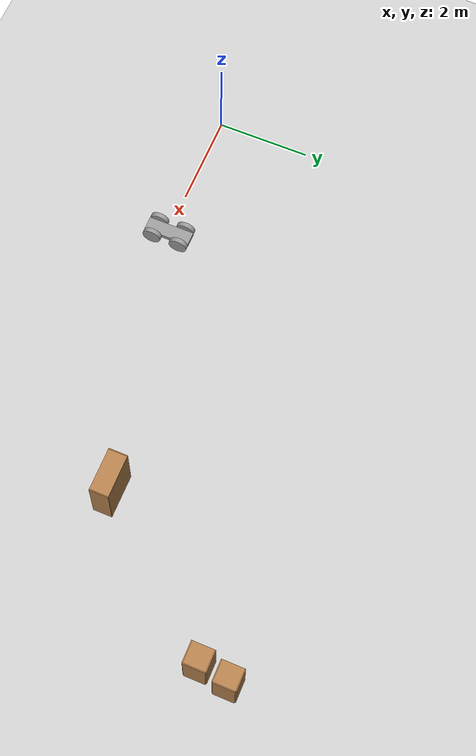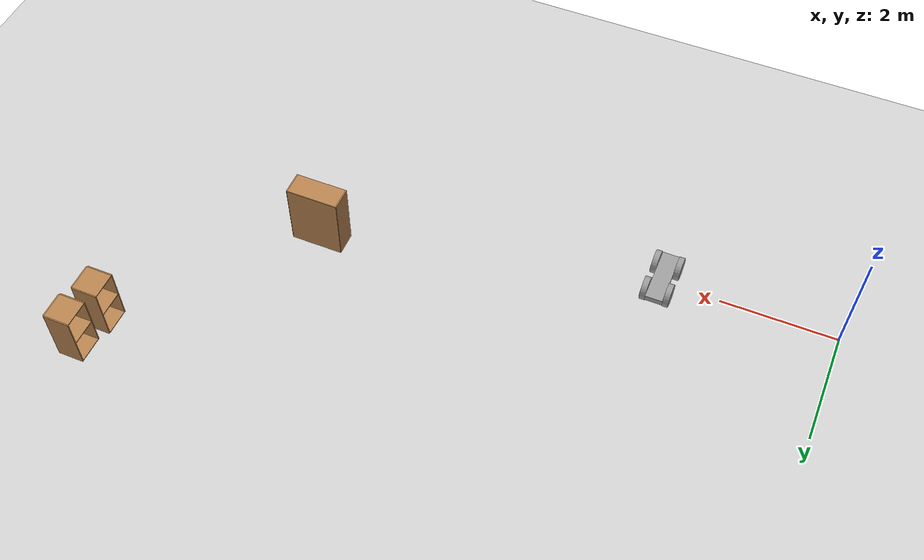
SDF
<sdf version="1.6">
 <world name="default">
  <model name="ground_plane">
   <static>1</static>
   <link name="link">
    <collision name="collision">
     <geometry><plane><normal>0 0 1</normal><size>100 100</size></plane></geometry>
     <surface>
      <contact><collide_bitmask>65535</collide_bitmask></contact>
      <friction><ode><mu>100</mu><mu2>50</mu2></ode></friction>
     </surface>
    </collision>
    <visual name="visual">
     <cast_shadows>0</cast_shadows>
     <geometry><plane><normal>0 0 1</normal><size>100 100</size></plane></geometry>
     <material>
      <script><uri>file://media/materials/scripts/gazebo.material</uri><name>Gazebo/Grey</name></script>
     </material>
    </visual>
   </link>
  </model>
  <model name="cabinet">
   <static>1</static>
   <link name="cabinet_bottom_plate">
    <inertial>
     <pose>0 0 -1 0 -0 0</pose>
     <inertia><ixx>2.05</ixx><ixy>0</ixy><ixz>0</ixz><iyy>2.05</iyy><iyz>0</iyz><izz>2.05</izz></inertia>
     <mass>25</mass>
    </inertial>
    <collision name="cabinet_bottom_plate_geom">
     <pose>0 0 0.01 0 -0 0</pose>
     <geometry><box><size>0.45 0.45 0.02</size></box></geometry>
    </collision>
    <visual name="cabinet_bottom_plate_geom_visual">
     <pose>0 0 0.01 0 -0 0</pose>
     <geometry><box><size>0.45 0.45 0.02</size></box></geometry>
     <material>
      <script><uri>file://media/materials/scripts/gazebo.material</uri><name>Gazebo/Wood</name></script>
     </material>
    </visual>
    <collision name="cabinet_bottom_plate_geom_cabinet_back_plate">
     <pose>0.235 0 0.51 0 -0 0</pose>
     <geometry><box><size>0.02 0.45 1.02</size></box></geometry>
    </collision>
    <visual name="cabinet_bottom_plate_geom_cabinet_back_plate_visual">
     <pose>0.235 0 0.51 0 -0 0</pose>
     <geometry><box><size>0.02 0.45 1.02</size></box></geometry>
     <material>
      <script><uri>file://media/materials/scripts/gazebo.material</uri><name>Gazebo/Wood</name></script>
     </material>
    </visual>
    <collision name="cabinet_bottom_plate_geom_cabinet_left_plate">
     <pose>0 0.235 0.51 0 -0 0</pose>
     <geometry><box><size>0.45 0.02 1.02</size></box></geometry>
    </collision>
    <visual name="cabinet_bottom_plate_geom_cabinet_left_plate_visual">
     <pose>0 0.235 0.51 0 -0 0</pose>
     <geometry><box><size>0.45 0.02 1.02</size></box></geometry>
     <material>
      <script><uri>file://media/materials/scripts/gazebo.material</uri><name>Gazebo/Wood</name></script>
     </material>
    </visual>
    <collision name="cabinet_bottom_plate_geom_cabinet_middle_plate">
     <pose>0 0 0.51 0 -0 0</pose>
     <geometry><box><size>0.45 0.45 0.02</size></box></geometry>
    </collision>
    <visual name="cabinet_bottom_plate_geom_cabinet_middle_plate_visual">
     <pose>0 0 0.51 0 -0 0</pose>
     <geometry><box><size>0.45 0.45 0.02</size></box></geometry>
     <material>
      <script><uri>file://media/materials/scripts/gazebo.material</uri><name>Gazebo/Wood</name></script>
     </material>
    </visual>
    <collision name="cabinet_bottom_plate_geom_cabinet_right_plate">
     <pose>0 -0.235 0.51 0 -0 0</pose>
     <geometry><box><size>0.45 0.02 1.02</size></box></geometry>
    </collision>
    <visual name="cabinet_bottom_plate_geom_cabinet_right_plate_visual">
     <pose>0 -0.235 0.51 0 -0 0</pose>
     <geometry><box><size>0.45 0.02 1.02</size></box></geometry>
     <material>
      <script><uri>file://media/materials/scripts/gazebo.material</uri><name>Gazebo/Wood</name></script>
     </material>
    </visual>
    <collision name="cabinet_bottom_plate_geom_cabinet_top_plate">
     <pose>0 0 1.01 0 -0 0</pose>
     <geometry><box><size>0.45 0.45 0.02</size></box></geometry>
    </collision>
    <visual name="cabinet_bottom_plate_geom_cabinet_top_plate_visual">
     <pose>0 0 1.01 0 -0 0</pose>
     <geometry><box><size>0.45 0.45 0.02</size></box></geometry>
     <material>
      <script><uri>file://media/materials/scripts/gazebo.material</uri><name>Gazebo/Wood</name></script>
     </material>
    </visual>
   </link>
   <pose>11.3712 4.92104 0 0 -0 0</pose>
  </model>
  <model name="cabinet_0">
   <static>1</static>
   <link name="cabinet_bottom_plate">
    <inertial>
     <pose>0 0 -1 0 -0 0</pose>
     <inertia><ixx>2.05</ixx><ixy>0</ixy><ixz>0</ixz><iyy>2.05</iyy><iyz>0</iyz><izz>2.05</izz></inertia>
     <mass>25</mass>
    </inertial>
    <collision name="cabinet_bottom_plate_geom">
     <pose>0 0 0.01 0 -0 0</pose>
     <geometry><box><size>0.45 0.45 0.02</size></box></geometry>
    </collision>
    <visual name="cabinet_bottom_plate_geom_visual">
     <pose>0 0 0.01 0 -0 0</pose>
     <geometry><box><size>0.45 0.45 0.02</size></box></geometry>
     <material>
      <script><uri>file://media/materials/scripts/gazebo.material</uri><name>Gazebo/Wood</name></script>
     </material>
    </visual>
    <collision name="cabinet_bottom_plate_geom_cabinet_back_plate">
     <pose>0.235 0 0.51 0 -0 0</pose>
     <geometry><box><size>0.02 0.45 1.02</size></box></geometry>
    </collision>
    <visual name="cabinet_bottom_plate_geom_cabinet_back_plate_visual">
     <pose>0.235 0 0.51 0 -0 0</pose>
     <geometry><box><size>0.02 0.45 1.02</size></box></geometry>
     <material>
      <script><uri>file://media/materials/scripts/gazebo.material</uri><name>Gazebo/Wood</name></script>
     </material>
    </visual>
    <collision name="cabinet_bottom_plate_geom_cabinet_left_plate">
     <pose>0 0.235 0.51 0 -0 0</pose>
     <geometry><box><size>0.45 0.02 1.02</size></box></geometry>
    </collision>
    <visual name="cabinet_bottom_plate_geom_cabinet_left_plate_visual">
     <pose>0 0.235 0.51 0 -0 0</pose>
     <geometry><box><size>0.45 0.02 1.02</size></box></geometry>
     <material>
      <script><uri>file://media/materials/scripts/gazebo.material</uri><name>Gazebo/Wood</name></script>
     </material>
    </visual>
    <collision name="cabinet_bottom_plate_geom_cabinet_middle_plate">
     <pose>0 0 0.51 0 -0 0</pose>
     <geometry><box><size>0.45 0.45 0.02</size></box></geometry>
    </collision>
    <visual name="cabinet_bottom_plate_geom_cabinet_middle_plate_visual">
     <pose>0 0 0.51 0 -0 0</pose>
     <geometry><box><size>0.45 0.45 0.02</size></box></geometry>
     <material>
      <script><uri>file://media/materials/scripts/gazebo.material</uri><name>Gazebo/Wood</name></script>
     </material>
    </visual>
    <collision name="cabinet_bottom_plate_geom_cabinet_right_plate">
     <pose>0 -0.235 0.51 0 -0 0</pose>
     <geometry><box><size>0.45 0.02 1.02</size></box></geometry>
    </collision>
    <visual name="cabinet_bottom_plate_geom_cabinet_right_plate_visual">
     <pose>0 -0.235 0.51 0 -0 0</pose>
     <geometry><box><size>0.45 0.02 1.02</size></box></geometry>
     <material>
      <script><uri>file://media/materials/scripts/gazebo.material</uri><name>Gazebo/Wood</name></script>
     </material>
    </visual>
    <collision name="cabinet_bottom_plate_geom_cabinet_top_plate">
     <pose>0 0 1.01 0 -0 0</pose>
     <geometry><box><size>0.45 0.45 0.02</size></box></geometry>
    </collision>
    <visual name="cabinet_bottom_plate_geom_cabinet_top_plate_visual">
     <pose>0 0 1.01 0 -0 0</pose>
     <geometry><box><size>0.45 0.45 0.02</size></box></geometry>
     <material>
      <script><uri>file://media/materials/scripts/gazebo.material</uri><name>Gazebo/Wood</name></script>
     </material>
    </visual>
   </link>
   <pose>11.2649 4.2852 0 0 -0 0</pose>
  </model>
  <model name="bookshelf">
   <static>1</static>
   <link name="link">
    <inertial><mass>1</mass></inertial>
    <collision name="back">
     <pose>0 0.005 0.6 0 -0 0</pose>
     <geometry><box><size>0.9 0.01 1.2</size></box></geometry>
    </collision>
    <visual name="visual1">
     <pose>0 0.005 0.6 0 -0 0</pose>
     <geometry><box><size>0.9 0.01 1.2</size></box></geometry>
     <material>
      <script><uri>file://media/materials/scripts/gazebo.material</uri><name>Gazebo/Wood</name></script>
     </material>
    </visual>
    <collision name="left_side">
     <pose>0.45 -0.195 0.6 0 -0 0</pose>
     <geometry><box><size>0.02 0.4 1.2</size></box></geometry>
    </collision>
    <visual name="visual2">
     <pose>0.45 -0.195 0.6 0 -0 0</pose>
     <geometry><box><size>0.02 0.4 1.2</size></box></geometry>
     <material>
      <script><uri>file://media/materials/scripts/gazebo.material</uri><name>Gazebo/Wood</name></script>
     </material>
    </visual>
    <collision name="right_side">
     <pose>-0.45 -0.195 0.6 0 -0 0</pose>
     <geometry><box><size>0.02 0.4 1.2</size></box></geometry>
    </collision>
    <visual name="visual3">
     <pose>-0.45 -0.195 0.6 0 -0 0</pose>
     <geometry><box><size>0.02 0.4 1.2</size></box></geometry>
     <material>
      <script><uri>file://media/materials/scripts/gazebo.material</uri><name>Gazebo/Wood</name></script>
     </material>
    </visual>
    <collision name="bottom">
     <pose>0 -0.195 0.03 0 -0 0</pose>
     <geometry><box><size>0.88 0.4 0.06</size></box></geometry>
    </collision>
    <visual name="visual4">
     <pose>0 -0.195 0.03 0 -0 0</pose>
     <geometry><box><size>0.88 0.4 0.06</size></box></geometry>
     <material>
      <script><uri>file://media/materials/scripts/gazebo.material</uri><name>Gazebo/Wood</name></script>
     </material>
    </visual>
    <collision name="top">
     <pose>0 -0.195 1.19 0 -0 0</pose>
     <geometry><box><size>0.88 0.4 0.02</size></box></geometry>
    </collision>
    <visual name="visual5">
     <pose>0 -0.195 1.19 0 -0 0</pose>
     <geometry><box><size>0.88 0.4 0.02</size></box></geometry>
     <material>
      <script><uri>file://media/materials/scripts/gazebo.material</uri><name>Gazebo/Wood</name></script>
     </material>
    </visual>
    <collision name="low_shelf">
     <pose>0 -0.195 0.43 0 -0 0</pose>
     <geometry><box><size>0.88 0.4 0.02</size></box></geometry>
    </collision>
    <visual name="visual6">
     <pose>0 -0.195 0.43 0 -0 0</pose>
     <geometry><box><size>0.88 0.4 0.02</size></box></geometry>
     <material>
      <script><uri>file://media/materials/scripts/gazebo.material</uri><name>Gazebo/Wood</name></script>
     </material>
    </visual>
    <collision name="high_shelf">
     <pose>0 -0.195 0.8 0 -0 0</pose>
     <geometry><box><size>0.88 0.4 0.02</size></box></geometry>
    </collision>
    <visual name="visual7">
     <pose>0 -0.195 0.8 0 -0 0</pose>
     <geometry><box><size>0.88 0.4 0.02</size></box></geometry>
     <material>
      <script><uri>file://media/materials/scripts/gazebo.material</uri><name>Gazebo/Wood</name></script>
     </material>
    </visual>
   </link>
   <pose>8.73687 1.52636 0 0 -0 0</pose>
  </model>
  <model name="model1_0">
   <link name="link_0">
    <inertial>
     <mass>1</mass>
     <inertia>
      <ixx>0.166667</ixx>
      <ixy>0</ixy>
      <ixz>0</ixz>
      <iyy>0.166667</iyy>
      <iyz>0</iyz>
      <izz>0.166667</izz>
     </inertia>
    </inertial>
    <visual name="visual">
     <geometry><box><size>0.3 1 0.1</size></box></geometry>
     <material>
      <lighting>1</lighting>
      <script><uri>file://media/materials/scripts/gazebo.material</uri><name>Gazebo/Grey</name></script>
      <shader type="pixel"><normal_map>__default__</normal_map></shader>
      <ambient>0.3 0.3 0.3 1</ambient>
      <diffuse>0.7 0.7 0.7 1</diffuse>
      <specular>0.01 0.01 0.01 1</specular>
      <emissive>0 0 0 1</emissive>
     </material>
    </visual>
    <collision name="collision">
     <geometry><box><size>0.3 1 0.1</size></box></geometry>
     <surface>
      <friction>
       <ode><mu>1</mu><mu2>1</mu2><fdir1>0 0 0</fdir1><slip1>0</slip1><slip2>0</slip2></ode>
       <torsional>
        <coefficient>1</coefficient>
        <patch_radius>0</patch_radius>
        <surface_radius>0</surface_radius>
        <use_patch_radius>1</use_patch_radius>
        <ode><slip>0</slip></ode>
       </torsional>
      </friction>
      <bounce><restitution_coefficient>0</restitution_coefficient><threshold>1e+06</threshold></bounce>
      <contact>
       <collide_without_contact>0</collide_without_contact>
       <collide_without_contact_bitmask>1</collide_without_contact_bitmask>
       <collide_bitmask>1</collide_bitmask>
       <ode>
        <soft_cfm>0</soft_cfm>
        <soft_erp>0.2</soft_erp>
        <kp>1e+13</kp>
        <kd>1</kd>
        <max_vel>0.01</max_vel>
        <min_depth>0</min_depth>
       </ode>
       <bullet>
        <split_impulse>1</split_impulse>
        <split_impulse_penetration_threshold>-0.01</split_impulse_penetration_threshold>
        <soft_cfm>0</soft_cfm>
        <soft_erp>0.2</soft_erp>
        <kp>1e+13</kp>
        <kd>1</kd>
       </bullet>
      </contact>
     </surface>
    </collision>
   </link>
   <link name="link_1">
    <pose>0.200019 -0.3 0 0 1.5707 0</pose>
    <inertial>
     <mass>1</mass>
     <inertia><ixx>0.145833</ixx><ixy>0</ixy><ixz>0</ixz><iyy>0.145833</iyy><iyz>0</iyz><izz>0.125</izz></inertia>
    </inertial>
    <visual name="visual">
     <geometry><cylinder><radius>0.2</radius><length>0.1</length></cylinder></geometry>
     <material>
      <lighting>1</lighting>
      <script><uri>file://media/materials/scripts/gazebo.material</uri><name>Gazebo/Grey</name></script>
      <shader type="pixel"><normal_map>__default__</normal_map></shader>
      <ambient>0.3 0.3 0.3 1</ambient>
      <diffuse>0.7 0.7 0.7 1</diffuse>
      <specular>0.01 0.01 0.01 1</specular>
      <emissive>0 0 0 1</emissive>
     </material>
    </visual>
    <collision name="collision">
     <geometry><cylinder><radius>0.2</radius><length>0.1</length></cylinder></geometry>
     <surface>
      <friction>
       <ode><mu>1</mu><mu2>1</mu2><fdir1>0 0 0</fdir1><slip1>0</slip1><slip2>0</slip2></ode>
       <torsional>
        <coefficient>1</coefficient>
        <patch_radius>0</patch_radius>
        <surface_radius>0</surface_radius>
        <use_patch_radius>1</use_patch_radius>
        <ode><slip>0</slip></ode>
       </torsional>
      </friction>
      <bounce><restitution_coefficient>0</restitution_coefficient><threshold>1e+06</threshold></bounce>
      <contact>
       <collide_without_contact>0</collide_without_contact>
       <collide_without_contact_bitmask>1</collide_without_contact_bitmask>
       <collide_bitmask>1</collide_bitmask>
       <ode>
        <soft_cfm>0</soft_cfm>
        <soft_erp>0.2</soft_erp>
        <kp>1e+13</kp>
        <kd>1</kd>
        <max_vel>0.01</max_vel>
        <min_depth>0</min_depth>
       </ode>
       <bullet>
        <split_impulse>1</split_impulse>
        <split_impulse_penetration_threshold>-0.01</split_impulse_penetration_threshold>
        <soft_cfm>0</soft_cfm>
        <soft_erp>0.2</soft_erp>
        <kp>1e+13</kp>
        <kd>1</kd>
       </bullet>
      </contact>
     </surface>
    </collision>
   </link>
   <link name="link_1_clone">
    <pose>-0.200019 -0.3 0 0 1.5707 0</pose>
    <inertial>
     <mass>1</mass>
     <inertia><ixx>0.145833</ixx><ixy>0</ixy><ixz>0</ixz><iyy>0.145833</iyy><iyz>0</iyz><izz>0.125</izz></inertia>
    </inertial>
    <visual name="visual">
     <geometry><cylinder><radius>0.2</radius><length>0.1</length></cylinder></geometry>
     <material>
      <lighting>1</lighting>
      <script><uri>file://media/materials/scripts/gazebo.material</uri><name>Gazebo/Grey</name></script>
      <shader type="pixel"><normal_map>__default__</normal_map></shader>
      <ambient>0.3 0.3 0.3 1</ambient>
      <diffuse>0.7 0.7 0.7 1</diffuse>
      <specular>0.01 0.01 0.01 1</specular>
      <emissive>0 0 0 1</emissive>
     </material>
    </visual>
    <collision name="collision">
     <geometry><cylinder><radius>0.2</radius><length>0.1</length></cylinder></geometry>
     <surface>
      <friction>
       <ode><mu>1</mu><mu2>1</mu2><fdir1>0 0 0</fdir1><slip1>0</slip1><slip2>0</slip2></ode>
       <torsional>
        <coefficient>1</coefficient>
        <patch_radius>0</patch_radius>
        <surface_radius>0</surface_radius>
        <use_patch_radius>1</use_patch_radius>
        <ode><slip>0</slip></ode>
       </torsional>
      </friction>
      <bounce><restitution_coefficient>0</restitution_coefficient><threshold>1e+06</threshold></bounce>
      <contact>
       <collide_without_contact>0</collide_without_contact>
       <collide_without_contact_bitmask>1</collide_without_contact_bitmask>
       <collide_bitmask>1</collide_bitmask>
       <ode>
        <soft_cfm>0</soft_cfm>
        <soft_erp>0.2</soft_erp>
        <kp>1e+13</kp>
        <kd>1</kd>
        <max_vel>0.01</max_vel>
        <min_depth>0</min_depth>
       </ode>
       <bullet>
        <split_impulse>1</split_impulse>
        <split_impulse_penetration_threshold>-0.01</split_impulse_penetration_threshold>
        <soft_cfm>0</soft_cfm>
        <soft_erp>0.2</soft_erp>
        <kp>1e+13</kp>
        <kd>1</kd>
       </bullet>
      </contact>
     </surface>
    </collision>
   </link>
   <link name="link_1_clone_0">
    <pose>0.200019 0.3 0 0 1.5707 0</pose>
    <inertial>
     <mass>1</mass>
     <inertia><ixx>0.145833</ixx><ixy>0</ixy><ixz>0</ixz><iyy>0.145833</iyy><iyz>0</iyz><izz>0.125</izz></inertia>
    </inertial>
    <visual name="visual">
     <geometry><cylinder><radius>0.2</radius><length>0.1</length></cylinder></geometry>
     <material>
      <lighting>1</lighting>
      <script><uri>file://media/materials/scripts/gazebo.material</uri><name>Gazebo/Grey</name></script>
      <shader type="pixel"><normal_map>__default__</normal_map></shader>
      <ambient>0.3 0.3 0.3 1</ambient>
      <diffuse>0.7 0.7 0.7 1</diffuse>
      <specular>0.01 0.01 0.01 1</specular>
      <emissive>0 0 0 1</emissive>
     </material>
    </visual>
    <collision name="collision">
     <geometry><cylinder><radius>0.2</radius><length>0.1</length></cylinder></geometry>
     <surface>
      <friction>
       <ode><mu>1</mu><mu2>1</mu2><fdir1>0 0 0</fdir1><slip1>0</slip1><slip2>0</slip2></ode>
       <torsional>
        <coefficient>1</coefficient>
        <patch_radius>0</patch_radius>
        <surface_radius>0</surface_radius>
        <use_patch_radius>1</use_patch_radius>
        <ode><slip>0</slip></ode>
       </torsional>
      </friction>
      <bounce><restitution_coefficient>0</restitution_coefficient><threshold>1e+06</threshold></bounce>
      <contact>
       <collide_without_contact>0</collide_without_contact>
       <collide_without_contact_bitmask>1</collide_without_contact_bitmask>
       <collide_bitmask>1</collide_bitmask>
       <ode>
        <soft_cfm>0</soft_cfm>
        <soft_erp>0.2</soft_erp>
        <kp>1e+13</kp>
        <kd>1</kd>
        <max_vel>0.01</max_vel>
        <min_depth>0</min_depth>
       </ode>
       <bullet>
        <split_impulse>1</split_impulse>
        <split_impulse_penetration_threshold>-0.01</split_impulse_penetration_threshold>
        <soft_cfm>0</soft_cfm>
        <soft_erp>0.2</soft_erp>
        <kp>1e+13</kp>
        <kd>1</kd>
       </bullet>
      </contact>
     </surface>
    </collision>
   </link>
   <link name="link_1_clone_1">
    <pose>-0.200019 0.3 0 0 1.5707 0</pose>
    <inertial>
     <mass>1</mass>
     <inertia><ixx>0.145833</ixx><ixy>0</ixy><ixz>0</ixz><iyy>0.145833</iyy><iyz>0</iyz><izz>0.125</izz></inertia>
    </inertial>
    <visual name="visual">
     <geometry><cylinder><radius>0.2</radius><length>0.1</length></cylinder></geometry>
     <material>
      <lighting>1</lighting>
      <script><uri>file://media/materials/scripts/gazebo.material</uri><name>Gazebo/Grey</name></script>
      <shader type="pixel"><normal_map>__default__</normal_map></shader>
      <ambient>0.3 0.3 0.3 1</ambient>
      <diffuse>0.7 0.7 0.7 1</diffuse>
      <specular>0.01 0.01 0.01 1</specular>
      <emissive>0 0 0 1</emissive>
     </material>
    </visual>
    <collision name="collision">
     <geometry><cylinder><radius>0.2</radius><length>0.1</length></cylinder></geometry>
     <surface>
      <friction>
       <ode><mu>1</mu><mu2>1</mu2><fdir1>0 0 0</fdir1><slip1>0</slip1><slip2>0</slip2></ode>
       <torsional>
        <coefficient>1</coefficient>
        <patch_radius>0</patch_radius>
        <surface_radius>0</surface_radius>
        <use_patch_radius>1</use_patch_radius>
        <ode><slip>0</slip></ode>
       </torsional>
      </friction>
      <bounce><restitution_coefficient>0</restitution_coefficient><threshold>1e+06</threshold></bounce>
      <contact>
       <collide_without_contact>0</collide_without_contact>
       <collide_without_contact_bitmask>1</collide_without_contact_bitmask>
       <collide_bitmask>1</collide_bitmask>
       <ode>
        <soft_cfm>0</soft_cfm>
        <soft_erp>0.2</soft_erp>
        <kp>1e+13</kp>
        <kd>1</kd>
        <max_vel>0.01</max_vel>
        <min_depth>0</min_depth>
       </ode>
       <bullet>
        <split_impulse>1</split_impulse>
        <split_impulse_penetration_threshold>-0.01</split_impulse_penetration_threshold>
        <soft_cfm>0</soft_cfm>
        <soft_erp>0.2</soft_erp>
        <kp>1e+13</kp>
        <kd>1</kd>
       </bullet>
      </contact>
     </surface>
    </collision>
   </link>
   <joint name="link_0_JOINT_0" type="revolute">
    <parent>link_0</parent>
    <child>link_1</child>
    <axis>
     <xyz>0 0 1</xyz>
     <use_parent_model_frame>0</use_parent_model_frame>
     <limit>
      <lower>-1.79769e+308</lower>
      <upper>1.79769e+308</upper>
      <effort>-1</effort>
      <velocity>-1</velocity>
     </limit>
     <dynamics>
      <spring_reference>0</spring_reference>
      <spring_stiffness>0</spring_stiffness>
      <damping>0</damping>
     </dynamics>
    </axis>
    <physics>
     <ode><limit><cfm>0</cfm><erp>0.2</erp></limit><suspension><cfm>0</cfm><erp>0.2</erp></suspension></ode>
    </physics>
   </joint>
   <joint name="link_0_JOINT_1" type="revolute">
    <parent>link_0</parent>
    <child>link_1_clone</child>
    <axis>
     <xyz>0 0 1</xyz>
     <use_parent_model_frame>0</use_parent_model_frame>
     <limit>
      <lower>-1.79769e+308</lower>
      <upper>1.79769e+308</upper>
      <effort>-1</effort>
      <velocity>-1</velocity>
     </limit>
     <dynamics>
      <spring_reference>0</spring_reference>
      <spring_stiffness>0</spring_stiffness>
      <damping>0</damping>
     </dynamics>
    </axis>
    <physics>
     <ode><limit><cfm>0</cfm><erp>0.2</erp></limit><suspension><cfm>0</cfm><erp>0.2</erp></suspension></ode>
    </physics>
   </joint>
   <joint name="link_0_JOINT_2" type="revolute">
    <parent>link_0</parent>
    <child>link_1_clone_0</child>
    <axis>
     <xyz>0 0 1</xyz>
     <use_parent_model_frame>0</use_parent_model_frame>
     <limit>
      <lower>-1.79769e+308</lower>
      <upper>1.79769e+308</upper>
      <effort>-1</effort>
      <velocity>-1</velocity>
     </limit>
     <dynamics>
      <spring_reference>0</spring_reference>
      <spring_stiffness>0</spring_stiffness>
      <damping>0</damping>
     </dynamics>
    </axis>
    <physics>
     <ode><limit><cfm>0</cfm><erp>0.2</erp></limit><suspension><cfm>0</cfm><erp>0.2</erp></suspension></ode>
    </physics>
   </joint>
   <joint name="link_0_JOINT_3" type="revolute">
    <parent>link_0</parent>
    <child>link_1_clone_1</child>
    <axis>
     <xyz>0 0 1</xyz>
     <use_parent_model_frame>0</use_parent_model_frame>
     <limit>
      <lower>-1.79769e+308</lower>
      <upper>1.79769e+308</upper>
      <effort>-1</effort>
      <velocity>-1</velocity>
     </limit>
     <dynamics>
      <spring_reference>0</spring_reference>
      <spring_stiffness>0</spring_stiffness>
      <damping>0</damping>
     </dynamics>
    </axis>
    <physics>
     <ode><limit><cfm>0</cfm><erp>0.2</erp></limit><suspension><cfm>0</cfm><erp>0.2</erp></suspension></ode>
    </physics>
   </joint>
   <static>0</static>
   <pose>3.01761 0.062579 0.200004 0 2e-06 0.000506</pose>
  </model>
 </world>
</sdf>
